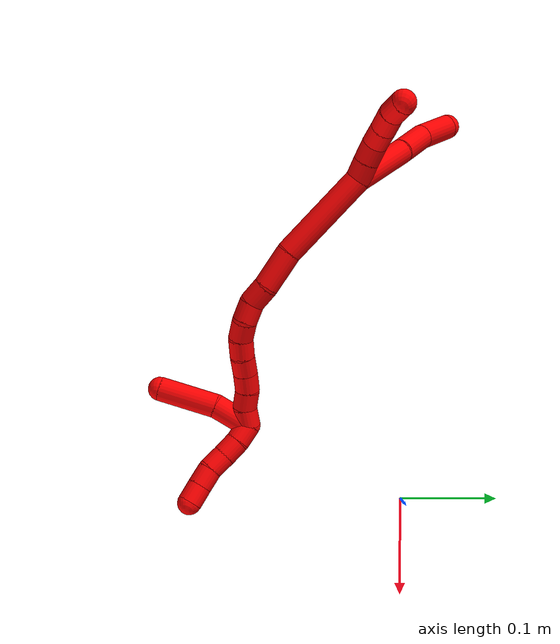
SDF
<sdf version="1.7">
 <world name="default">
  <model name="2">
   <static>0</static>
   <link name="2">
    <collision name="collision-cylinder-e_1_2_8">
     <pose>-0.014724 0.002936 0.031737 -0.092255 -0.432761 0.020293</pose>
     <geometry><cylinder><radius>0.0125</radius><length>0.070219</length></cylinder></geometry>
     <surface>
      <friction><ode><mu>1.16</mu><mu2>1.16</mu2><slip1>0</slip1><slip2>0</slip2></ode></friction>
      <contact><ode><kp>1e+06</kp><kd>1</kd><max_vel>0</max_vel><min_depth>0.001</min_depth></ode></contact>
     </surface>
    </collision>
    <visual name="visual-cylinder-e_1_2_8">
     <pose>-0.014724 0.002936 0.031737 -0.092255 -0.432761 0.020293</pose>
     <geometry><cylinder><radius>0.0125</radius><length>0.070219</length></cylinder></geometry>
     <material><ambient>1 0 0 1</ambient></material>
    </visual>
    <collision name="collision-cylinder-e_2_8_9">
     <pose>-0.036383 0.005463 0.083184 0.02078 -0.338271 -0.003549</pose>
     <geometry><cylinder><radius>0.0125</radius><length>0.041795</length></cylinder></geometry>
     <surface>
      <friction><ode><mu>1.16</mu><mu2>1.16</mu2><slip1>0</slip1><slip2>0</slip2></ode></friction>
      <contact><ode><kp>1e+06</kp><kd>1</kd><max_vel>0</max_vel><min_depth>0.001</min_depth></ode></contact>
     </surface>
    </collision>
    <visual name="visual-cylinder-e_2_8_9">
     <pose>-0.036383 0.005463 0.083184 0.02078 -0.338271 -0.003549</pose>
     <geometry><cylinder><radius>0.0125</radius><length>0.041795</length></cylinder></geometry>
     <material><ambient>1 0 0 1</ambient></material>
    </visual>
    <collision name="collision-cylinder-e_3_9_6">
     <pose>-0.054056 0.006446 0.118497 -0.089027 -0.600877 0.027598</pose>
     <geometry><cylinder><radius>0.0125</radius><length>0.037986</length></cylinder></geometry>
     <surface>
      <friction><ode><mu>1.16</mu><mu2>1.16</mu2><slip1>0</slip1><slip2>0</slip2></ode></friction>
      <contact><ode><kp>1e+06</kp><kd>1</kd><max_vel>0</max_vel><min_depth>0.001</min_depth></ode></contact>
     </surface>
    </collision>
    <visual name="visual-cylinder-e_3_9_6">
     <pose>-0.054056 0.006446 0.118497 -0.089027 -0.600877 0.027598</pose>
     <geometry><cylinder><radius>0.0125</radius><length>0.037986</length></cylinder></geometry>
     <material><ambient>1 0 0 1</ambient></material>
    </visual>
    <collision name="collision-cylinder-e_1_2_10">
     <pose>-0.000613 0.009511 0.003028 -1.26253 -0.061289 0.044812</pose>
     <geometry><cylinder><radius>0.0125</radius><length>0.02</length></cylinder></geometry>
     <surface>
      <friction><ode><mu>1.16</mu><mu2>1.16</mu2><slip1>0</slip1><slip2>0</slip2></ode></friction>
      <contact><ode><kp>1e+06</kp><kd>1</kd><max_vel>0</max_vel><min_depth>0.001</min_depth></ode></contact>
     </surface>
    </collision>
    <visual name="visual-cylinder-e_1_2_10">
     <pose>-0.000613 0.009511 0.003028 -1.26253 -0.061289 0.044812</pose>
     <geometry><cylinder><radius>0.0125</radius><length>0.02</length></cylinder></geometry>
     <material><ambient>1 0 0 1</ambient></material>
    </visual>
    <collision name="collision-cylinder-e_2_10_11">
     <pose>-0.002136 0.028697 0.008415 -1.33174 -0.09126 0.071708</pose>
     <geometry><cylinder><radius>0.0125</radius><length>0.02</length></cylinder></geometry>
     <surface>
      <friction><ode><mu>1.16</mu><mu2>1.16</mu2><slip1>0</slip1><slip2>0</slip2></ode></friction>
      <contact><ode><kp>1e+06</kp><kd>1</kd><max_vel>0</max_vel><min_depth>0.001</min_depth></ode></contact>
     </surface>
    </collision>
    <visual name="visual-cylinder-e_2_10_11">
     <pose>-0.002136 0.028697 0.008415 -1.33174 -0.09126 0.071708</pose>
     <geometry><cylinder><radius>0.0125</radius><length>0.02</length></cylinder></geometry>
     <material><ambient>1 0 0 1</ambient></material>
    </visual>
    <collision name="collision-cylinder-e_3_11_12">
     <pose>-0.004513 0.048233 0.009986 -1.65037 -0.147038 0.15918</pose>
     <geometry><cylinder><radius>0.0125</radius><length>0.02</length></cylinder></geometry>
     <surface>
      <friction><ode><mu>1.16</mu><mu2>1.16</mu2><slip1>0</slip1><slip2>0</slip2></ode></friction>
      <contact><ode><kp>1e+06</kp><kd>1</kd><max_vel>0</max_vel><min_depth>0.001</min_depth></ode></contact>
     </surface>
    </collision>
    <visual name="visual-cylinder-e_3_11_12">
     <pose>-0.004513 0.048233 0.009986 -1.65037 -0.147038 0.15918</pose>
     <geometry><cylinder><radius>0.0125</radius><length>0.02</length></cylinder></geometry>
     <material><ambient>1 0 0 1</ambient></material>
    </visual>
    <collision name="collision-cylinder-e_4_12_13">
     <pose>-0.007147 0.067938 0.007892 -1.70294 -0.11714 0.133693</pose>
     <geometry><cylinder><radius>0.0125</radius><length>0.02</length></cylinder></geometry>
     <surface>
      <friction><ode><mu>1.16</mu><mu2>1.16</mu2><slip1>0</slip1><slip2>0</slip2></ode></friction>
      <contact><ode><kp>1e+06</kp><kd>1</kd><max_vel>0</max_vel><min_depth>0.001</min_depth></ode></contact>
     </surface>
    </collision>
    <visual name="visual-cylinder-e_4_12_13">
     <pose>-0.007147 0.067938 0.007892 -1.70294 -0.11714 0.133693</pose>
     <geometry><cylinder><radius>0.0125</radius><length>0.02</length></cylinder></geometry>
     <material><ambient>1 0 0 1</ambient></material>
    </visual>
    <collision name="collision-cylinder-e_5_13_5">
     <pose>-0.01162 0.086945 0.004317 -1.81325 -0.336784 0.427696</pose>
     <geometry><cylinder><radius>0.0125</radius><length>0.02</length></cylinder></geometry>
     <surface>
      <friction><ode><mu>1.16</mu><mu2>1.16</mu2><slip1>0</slip1><slip2>0</slip2></ode></friction>
      <contact><ode><kp>1e+06</kp><kd>1</kd><max_vel>0</max_vel><min_depth>0.001</min_depth></ode></contact>
     </surface>
    </collision>
    <visual name="visual-cylinder-e_5_13_5">
     <pose>-0.01162 0.086945 0.004317 -1.81325 -0.336784 0.427696</pose>
     <geometry><cylinder><radius>0.0125</radius><length>0.02</length></cylinder></geometry>
     <material><ambient>1 0 0 1</ambient></material>
    </visual>
    <collision name="collision-cylinder-e_1_2_14">
     <pose>0.018734 -0.035058 -0.028113 2.2467 0.394983 0.79007</pose>
     <geometry><cylinder><radius>0.0125</radius><length>0.097374</length></cylinder></geometry>
     <surface>
      <friction><ode><mu>1.16</mu><mu2>1.16</mu2><slip1>0</slip1><slip2>0</slip2></ode></friction>
      <contact><ode><kp>1e+06</kp><kd>1</kd><max_vel>0</max_vel><min_depth>0.001</min_depth></ode></contact>
     </surface>
    </collision>
    <visual name="visual-cylinder-e_1_2_14">
     <pose>0.018734 -0.035058 -0.028113 2.2467 0.394983 0.79007</pose>
     <geometry><cylinder><radius>0.0125</radius><length>0.097374</length></cylinder></geometry>
     <material><ambient>1 0 0 1</ambient></material>
    </visual>
    <collision name="collision-cylinder-e_2_14_15">
     <pose>0.042036 -0.086008 -0.067698 2.19603 0.228958 0.442261</pose>
     <geometry><cylinder><radius>0.0125</radius><length>0.040249</length></cylinder></geometry>
     <surface>
      <friction><ode><mu>1.16</mu><mu2>1.16</mu2><slip1>0</slip1><slip2>0</slip2></ode></friction>
      <contact><ode><kp>1e+06</kp><kd>1</kd><max_vel>0</max_vel><min_depth>0.001</min_depth></ode></contact>
     </surface>
    </collision>
    <visual name="visual-cylinder-e_2_14_15">
     <pose>0.042036 -0.086008 -0.067698 2.19603 0.228958 0.442261</pose>
     <geometry><cylinder><radius>0.0125</radius><length>0.040249</length></cylinder></geometry>
     <material><ambient>1 0 0 1</ambient></material>
    </visual>
    <collision name="collision-cylinder-e_3_15_16">
     <pose>0.050402 -0.111211 -0.083584 2.01354 0.353173 0.549898</pose>
     <geometry><cylinder><radius>0.0125</radius><length>0.021964</length></cylinder></geometry>
     <surface>
      <friction><ode><mu>1.16</mu><mu2>1.16</mu2><slip1>0</slip1><slip2>0</slip2></ode></friction>
      <contact><ode><kp>1e+06</kp><kd>1</kd><max_vel>0</max_vel><min_depth>0.001</min_depth></ode></contact>
     </surface>
    </collision>
    <visual name="visual-cylinder-e_3_15_16">
     <pose>0.050402 -0.111211 -0.083584 2.01354 0.353173 0.549898</pose>
     <geometry><cylinder><radius>0.0125</radius><length>0.021964</length></cylinder></geometry>
     <material><ambient>1 0 0 1</ambient></material>
    </visual>
    <collision name="collision-cylinder-e_4_16_17">
     <pose>0.054452 -0.12916 -0.093223 2.11471 0.024898 0.044149</pose>
     <geometry><cylinder><radius>0.0125</radius><length>0.020198</length></cylinder></geometry>
     <surface>
      <friction><ode><mu>1.16</mu><mu2>1.16</mu2><slip1>0</slip1><slip2>0</slip2></ode></friction>
      <contact><ode><kp>1e+06</kp><kd>1</kd><max_vel>0</max_vel><min_depth>0.001</min_depth></ode></contact>
     </surface>
    </collision>
    <visual name="visual-cylinder-e_4_16_17">
     <pose>0.054452 -0.12916 -0.093223 2.11471 0.024898 0.044149</pose>
     <geometry><cylinder><radius>0.0125</radius><length>0.020198</length></cylinder></geometry>
     <material><ambient>1 0 0 1</ambient></material>
    </visual>
    <collision name="collision-cylinder-e_5_17_18">
     <pose>0.053758 -0.147463 -0.101131 1.84161 -0.093997 -0.123582</pose>
     <geometry><cylinder><radius>0.0125</radius><length>0.020149</length></cylinder></geometry>
     <surface>
      <friction><ode><mu>1.16</mu><mu2>1.16</mu2><slip1>0</slip1><slip2>0</slip2></ode></friction>
      <contact><ode><kp>1e+06</kp><kd>1</kd><max_vel>0</max_vel><min_depth>0.001</min_depth></ode></contact>
     </surface>
    </collision>
    <visual name="visual-cylinder-e_5_17_18">
     <pose>0.053758 -0.147463 -0.101131 1.84161 -0.093997 -0.123582</pose>
     <geometry><cylinder><radius>0.0125</radius><length>0.020149</length></cylinder></geometry>
     <material><ambient>1 0 0 1</ambient></material>
    </visual>
    <collision name="collision-cylinder-e_6_18_19">
     <pose>0.049153 -0.166135 -0.106243 1.83425 -0.373838 -0.484112</pose>
     <geometry><cylinder><radius>0.0125</radius><length>0.020043</length></cylinder></geometry>
     <surface>
      <friction><ode><mu>1.16</mu><mu2>1.16</mu2><slip1>0</slip1><slip2>0</slip2></ode></friction>
      <contact><ode><kp>1e+06</kp><kd>1</kd><max_vel>0</max_vel><min_depth>0.001</min_depth></ode></contact>
     </surface>
    </collision>
    <visual name="visual-cylinder-e_6_18_19">
     <pose>0.049153 -0.166135 -0.106243 1.83425 -0.373838 -0.484112</pose>
     <geometry><cylinder><radius>0.0125</radius><length>0.020043</length></cylinder></geometry>
     <material><ambient>1 0 0 1</ambient></material>
    </visual>
    <collision name="collision-cylinder-e_7_19_20">
     <pose>0.041402 -0.184173 -0.110006 1.71734 -0.421345 -0.485678</pose>
     <geometry><cylinder><radius>0.0125</radius><length>0.020006</length></cylinder></geometry>
     <surface>
      <friction><ode><mu>1.16</mu><mu2>1.16</mu2><slip1>0</slip1><slip2>0</slip2></ode></friction>
      <contact><ode><kp>1e+06</kp><kd>1</kd><max_vel>0</max_vel><min_depth>0.001</min_depth></ode></contact>
     </surface>
    </collision>
    <visual name="visual-cylinder-e_7_19_20">
     <pose>0.041402 -0.184173 -0.110006 1.71734 -0.421345 -0.485678</pose>
     <geometry><cylinder><radius>0.0125</radius><length>0.020006</length></cylinder></geometry>
     <material><ambient>1 0 0 1</ambient></material>
    </visual>
    <collision name="collision-cylinder-e_8_20_21">
     <pose>0.033266 -0.201992 -0.113898 1.85415 -0.416067 -0.54847</pose>
     <geometry><cylinder><radius>0.0125</radius><length>0.020016</length></cylinder></geometry>
     <surface>
      <friction><ode><mu>1.16</mu><mu2>1.16</mu2><slip1>0</slip1><slip2>0</slip2></ode></friction>
      <contact><ode><kp>1e+06</kp><kd>1</kd><max_vel>0</max_vel><min_depth>0.001</min_depth></ode></contact>
     </surface>
    </collision>
    <visual name="visual-cylinder-e_8_20_21">
     <pose>0.033266 -0.201992 -0.113898 1.85415 -0.416067 -0.54847</pose>
     <geometry><cylinder><radius>0.0125</radius><length>0.020016</length></cylinder></geometry>
     <material><ambient>1 0 0 1</ambient></material>
    </visual>
    <collision name="collision-cylinder-e_9_21_22">
     <pose>0.027441 -0.219913 -0.120125 1.9527 -0.178984 -0.263931</pose>
     <geometry><cylinder><radius>0.0125</radius><length>0.020002</length></cylinder></geometry>
     <surface>
      <friction><ode><mu>1.16</mu><mu2>1.16</mu2><slip1>0</slip1><slip2>0</slip2></ode></friction>
      <contact><ode><kp>1e+06</kp><kd>1</kd><max_vel>0</max_vel><min_depth>0.001</min_depth></ode></contact>
     </surface>
    </collision>
    <visual name="visual-cylinder-e_9_21_22">
     <pose>0.027441 -0.219913 -0.120125 1.9527 -0.178984 -0.263931</pose>
     <geometry><cylinder><radius>0.0125</radius><length>0.020002</length></cylinder></geometry>
     <material><ambient>1 0 0 1</ambient></material>
    </visual>
    <collision name="collision-cylinder-e_10_22_1">
     <pose>0.020733 -0.23705 -0.127203 1.9735 -0.515269 -0.758675</pose>
     <geometry><cylinder><radius>0.0125</radius><length>0.02</length></cylinder></geometry>
     <surface>
      <friction><ode><mu>1.16</mu><mu2>1.16</mu2><slip1>0</slip1><slip2>0</slip2></ode></friction>
      <contact><ode><kp>1e+06</kp><kd>1</kd><max_vel>0</max_vel><min_depth>0.001</min_depth></ode></contact>
     </surface>
    </collision>
    <visual name="visual-cylinder-e_10_22_1">
     <pose>0.020733 -0.23705 -0.127203 1.9735 -0.515269 -0.758675</pose>
     <geometry><cylinder><radius>0.0125</radius><length>0.02</length></cylinder></geometry>
     <material><ambient>1 0 0 1</ambient></material>
    </visual>
    <collision name="collision-cylinder-e_1_1_23">
     <pose>0.035046 -0.243145 -0.127938 -0.620369 1.40155 -0.528175</pose>
     <geometry><cylinder><radius>0.0125</radius><length>0.03904</length></cylinder></geometry>
     <surface>
      <friction><ode><mu>1.16</mu><mu2>1.16</mu2><slip1>0</slip1><slip2>0</slip2></ode></friction>
      <contact><ode><kp>1e+06</kp><kd>1</kd><max_vel>0</max_vel><min_depth>0.001</min_depth></ode></contact>
     </surface>
    </collision>
    <visual name="visual-cylinder-e_1_1_23">
     <pose>0.035046 -0.243145 -0.127938 -0.620369 1.40155 -0.528175</pose>
     <geometry><cylinder><radius>0.0125</radius><length>0.03904</length></cylinder></geometry>
     <material><ambient>1 0 0 1</ambient></material>
    </visual>
    <collision name="collision-cylinder-e_2_23_4">
     <pose>0.084658 -0.243739 -0.125846 1.79974 1.48627 1.71662</pose>
     <geometry><cylinder><radius>0.0125</radius><length>0.06096</length></cylinder></geometry>
     <surface>
      <friction><ode><mu>1.16</mu><mu2>1.16</mu2><slip1>0</slip1><slip2>0</slip2></ode></friction>
      <contact><ode><kp>1e+06</kp><kd>1</kd><max_vel>0</max_vel><min_depth>0.001</min_depth></ode></contact>
     </surface>
    </collision>
    <visual name="visual-cylinder-e_2_23_4">
     <pose>0.084658 -0.243739 -0.125846 1.79974 1.48627 1.71662</pose>
     <geometry><cylinder><radius>0.0125</radius><length>0.06096</length></cylinder></geometry>
     <material><ambient>1 0 0 1</ambient></material>
    </visual>
    <collision name="collision-cylinder-e_1_1_24">
     <pose>0.017957 -0.250822 -0.138495 2.50998 0.216903 0.643305</pose>
     <geometry><cylinder><radius>0.0125</radius><length>0.02</length></cylinder></geometry>
     <surface>
      <friction><ode><mu>1.16</mu><mu2>1.16</mu2><slip1>0</slip1><slip2>0</slip2></ode></friction>
      <contact><ode><kp>1e+06</kp><kd>1</kd><max_vel>0</max_vel><min_depth>0.001</min_depth></ode></contact>
     </surface>
    </collision>
    <visual name="visual-cylinder-e_1_1_24">
     <pose>0.017957 -0.250822 -0.138495 2.50998 0.216903 0.643305</pose>
     <geometry><cylinder><radius>0.0125</radius><length>0.02</length></cylinder></geometry>
     <material><ambient>1 0 0 1</ambient></material>
    </visual>
    <collision name="collision-cylinder-e_2_24_25">
     <pose>0.023879 -0.262181 -0.153759 2.49328 0.386572 1.05493</pose>
     <geometry><cylinder><radius>0.0125</radius><length>0.02</length></cylinder></geometry>
     <surface>
      <friction><ode><mu>1.16</mu><mu2>1.16</mu2><slip1>0</slip1><slip2>0</slip2></ode></friction>
      <contact><ode><kp>1e+06</kp><kd>1</kd><max_vel>0</max_vel><min_depth>0.001</min_depth></ode></contact>
     </surface>
    </collision>
    <visual name="visual-cylinder-e_2_24_25">
     <pose>0.023879 -0.262181 -0.153759 2.49328 0.386572 1.05493</pose>
     <geometry><cylinder><radius>0.0125</radius><length>0.02</length></cylinder></geometry>
     <material><ambient>1 0 0 1</ambient></material>
    </visual>
    <collision name="collision-cylinder-e_3_25_26">
     <pose>0.031746 -0.272647 -0.168854 2.57805 0.422033 1.27411</pose>
     <geometry><cylinder><radius>0.0125</radius><length>0.02</length></cylinder></geometry>
     <surface>
      <friction><ode><mu>1.16</mu><mu2>1.16</mu2><slip1>0</slip1><slip2>0</slip2></ode></friction>
      <contact><ode><kp>1e+06</kp><kd>1</kd><max_vel>0</max_vel><min_depth>0.001</min_depth></ode></contact>
     </surface>
    </collision>
    <visual name="visual-cylinder-e_3_25_26">
     <pose>0.031746 -0.272647 -0.168854 2.57805 0.422033 1.27411</pose>
     <geometry><cylinder><radius>0.0125</radius><length>0.02</length></cylinder></geometry>
     <material><ambient>1 0 0 1</ambient></material>
    </visual>
    <collision name="collision-cylinder-e_4_26_27">
     <pose>0.037636 -0.283236 -0.184573 2.52159 0.180433 0.550477</pose>
     <geometry><cylinder><radius>0.0125</radius><length>0.02</length></cylinder></geometry>
     <surface>
      <friction><ode><mu>1.16</mu><mu2>1.16</mu2><slip1>0</slip1><slip2>0</slip2></ode></friction>
      <contact><ode><kp>1e+06</kp><kd>1</kd><max_vel>0</max_vel><min_depth>0.001</min_depth></ode></contact>
     </surface>
    </collision>
    <visual name="visual-cylinder-e_4_26_27">
     <pose>0.037636 -0.283236 -0.184573 2.52159 0.180433 0.550477</pose>
     <geometry><cylinder><radius>0.0125</radius><length>0.02</length></cylinder></geometry>
     <material><ambient>1 0 0 1</ambient></material>
    </visual>
    <collision name="collision-cylinder-e_5_27_3">
     <pose>0.041025 -0.294168 -0.200961 2.585 0.160098 0.547457</pose>
     <geometry><cylinder><radius>0.0125</radius><length>0.02</length></cylinder></geometry>
     <surface>
      <friction><ode><mu>1.16</mu><mu2>1.16</mu2><slip1>0</slip1><slip2>0</slip2></ode></friction>
      <contact><ode><kp>1e+06</kp><kd>1</kd><max_vel>0</max_vel><min_depth>0.001</min_depth></ode></contact>
     </surface>
    </collision>
    <visual name="visual-cylinder-e_5_27_3">
     <pose>0.041025 -0.294168 -0.200961 2.585 0.160098 0.547457</pose>
     <geometry><cylinder><radius>0.0125</radius><length>0.02</length></cylinder></geometry>
     <material><ambient>1 0 0 1</ambient></material>
    </visual>
    <collision name="collision-sphere-3">
     <pose>0.042619 -0.299383 -0.209343 0 -0 0</pose>
     <geometry><sphere><radius>0.0125</radius></sphere></geometry>
     <surface>
      <friction><ode><mu>1.16</mu><mu2>1.16</mu2><slip1>0</slip1><slip2>0</slip2></ode></friction>
      <contact><ode><kp>1e+06</kp><kd>1</kd><max_vel>0</max_vel><min_depth>0.001</min_depth></ode></contact>
     </surface>
    </collision>
    <visual name="visual-sphere-3">
     <pose>0.042619 -0.299383 -0.209343 0 -0 0</pose>
     <geometry><sphere><radius>0.0125</radius></sphere></geometry>
     <material><ambient>1 0 0 1</ambient></material>
    </visual>
    <collision name="collision-sphere-27">
     <pose>0.039431 -0.288952 -0.192579 0 -0 0</pose>
     <geometry><sphere><radius>0.0125</radius></sphere></geometry>
     <surface>
      <friction><ode><mu>1.16</mu><mu2>1.16</mu2><slip1>0</slip1><slip2>0</slip2></ode></friction>
      <contact><ode><kp>1e+06</kp><kd>1</kd><max_vel>0</max_vel><min_depth>0.001</min_depth></ode></contact>
     </surface>
    </collision>
    <visual name="visual-sphere-27">
     <pose>0.039431 -0.288952 -0.192579 0 -0 0</pose>
     <geometry><sphere><radius>0.0125</radius></sphere></geometry>
     <material><ambient>1 0 0 1</ambient></material>
    </visual>
    <collision name="collision-sphere-26">
     <pose>0.035842 -0.27752 -0.176566 0 -0 0</pose>
     <geometry><sphere><radius>0.0125</radius></sphere></geometry>
     <surface>
      <friction><ode><mu>1.16</mu><mu2>1.16</mu2><slip1>0</slip1><slip2>0</slip2></ode></friction>
      <contact><ode><kp>1e+06</kp><kd>1</kd><max_vel>0</max_vel><min_depth>0.001</min_depth></ode></contact>
     </surface>
    </collision>
    <visual name="visual-sphere-26">
     <pose>0.035842 -0.27752 -0.176566 0 -0 0</pose>
     <geometry><sphere><radius>0.0125</radius></sphere></geometry>
     <material><ambient>1 0 0 1</ambient></material>
    </visual>
    <collision name="collision-sphere-25">
     <pose>0.027649 -0.267774 -0.161142 0 -0 0</pose>
     <geometry><sphere><radius>0.0125</radius></sphere></geometry>
     <surface>
      <friction><ode><mu>1.16</mu><mu2>1.16</mu2><slip1>0</slip1><slip2>0</slip2></ode></friction>
      <contact><ode><kp>1e+06</kp><kd>1</kd><max_vel>0</max_vel><min_depth>0.001</min_depth></ode></contact>
     </surface>
    </collision>
    <visual name="visual-sphere-25">
     <pose>0.027649 -0.267774 -0.161142 0 -0 0</pose>
     <geometry><sphere><radius>0.0125</radius></sphere></geometry>
     <material><ambient>1 0 0 1</ambient></material>
    </visual>
    <collision name="collision-sphere-24">
     <pose>0.020109 -0.256588 -0.146376 0 -0 0</pose>
     <geometry><sphere><radius>0.0125</radius></sphere></geometry>
     <surface>
      <friction><ode><mu>1.16</mu><mu2>1.16</mu2><slip1>0</slip1><slip2>0</slip2></ode></friction>
      <contact><ode><kp>1e+06</kp><kd>1</kd><max_vel>0</max_vel><min_depth>0.001</min_depth></ode></contact>
     </surface>
    </collision>
    <visual name="visual-sphere-24">
     <pose>0.020109 -0.256588 -0.146376 0 -0 0</pose>
     <geometry><sphere><radius>0.0125</radius></sphere></geometry>
     <material><ambient>1 0 0 1</ambient></material>
    </visual>
    <collision name="collision-sphere-4">
     <pose>0.115029 -0.246246 -0.12643 0 -0 0</pose>
     <geometry><sphere><radius>0.0125</radius></sphere></geometry>
     <surface>
      <friction><ode><mu>1.16</mu><mu2>1.16</mu2><slip1>0</slip1><slip2>0</slip2></ode></friction>
      <contact><ode><kp>1e+06</kp><kd>1</kd><max_vel>0</max_vel><min_depth>0.001</min_depth></ode></contact>
     </surface>
    </collision>
    <visual name="visual-sphere-4">
     <pose>0.115029 -0.246246 -0.12643 0 -0 0</pose>
     <geometry><sphere><radius>0.0125</radius></sphere></geometry>
     <material><ambient>1 0 0 1</ambient></material>
    </visual>
    <collision name="collision-sphere-23">
     <pose>0.054287 -0.241233 -0.125262 0 -0 0</pose>
     <geometry><sphere><radius>0.0125</radius></sphere></geometry>
     <surface>
      <friction><ode><mu>1.16</mu><mu2>1.16</mu2><slip1>0</slip1><slip2>0</slip2></ode></friction>
      <contact><ode><kp>1e+06</kp><kd>1</kd><max_vel>0</max_vel><min_depth>0.001</min_depth></ode></contact>
     </surface>
    </collision>
    <visual name="visual-sphere-23">
     <pose>0.054287 -0.241233 -0.125262 0 -0 0</pose>
     <geometry><sphere><radius>0.0125</radius></sphere></geometry>
     <material><ambient>1 0 0 1</ambient></material>
    </visual>
    <collision name="collision-sphere-1">
     <pose>0.015805 -0.245056 -0.130613 0 -0 0</pose>
     <geometry><sphere><radius>0.0125</radius></sphere></geometry>
     <surface>
      <friction><ode><mu>1.16</mu><mu2>1.16</mu2><slip1>0</slip1><slip2>0</slip2></ode></friction>
      <contact><ode><kp>1e+06</kp><kd>1</kd><max_vel>0</max_vel><min_depth>0.001</min_depth></ode></contact>
     </surface>
    </collision>
    <visual name="visual-sphere-1">
     <pose>0.015805 -0.245056 -0.130613 0 -0 0</pose>
     <geometry><sphere><radius>0.0125</radius></sphere></geometry>
     <material><ambient>1 0 0 1</ambient></material>
    </visual>
    <collision name="collision-sphere-22">
     <pose>0.02566 -0.229045 -0.123793 0 -0 0</pose>
     <geometry><sphere><radius>0.0125</radius></sphere></geometry>
     <surface>
      <friction><ode><mu>1.16</mu><mu2>1.16</mu2><slip1>0</slip1><slip2>0</slip2></ode></friction>
      <contact><ode><kp>1e+06</kp><kd>1</kd><max_vel>0</max_vel><min_depth>0.001</min_depth></ode></contact>
     </surface>
    </collision>
    <visual name="visual-sphere-22">
     <pose>0.02566 -0.229045 -0.123793 0 -0 0</pose>
     <geometry><sphere><radius>0.0125</radius></sphere></geometry>
     <material><ambient>1 0 0 1</ambient></material>
    </visual>
    <collision name="collision-sphere-21">
     <pose>0.029221 -0.21078 -0.116457 0 -0 0</pose>
     <geometry><sphere><radius>0.0125</radius></sphere></geometry>
     <surface>
      <friction><ode><mu>1.16</mu><mu2>1.16</mu2><slip1>0</slip1><slip2>0</slip2></ode></friction>
      <contact><ode><kp>1e+06</kp><kd>1</kd><max_vel>0</max_vel><min_depth>0.001</min_depth></ode></contact>
     </surface>
    </collision>
    <visual name="visual-sphere-21">
     <pose>0.029221 -0.21078 -0.116457 0 -0 0</pose>
     <geometry><sphere><radius>0.0125</radius></sphere></geometry>
     <material><ambient>1 0 0 1</ambient></material>
    </visual>
    <collision name="collision-sphere-11">
     <pose>-0.003048 0.038372 0.010773 0 -0 0</pose>
     <geometry><sphere><radius>0.0125</radius></sphere></geometry>
     <surface>
      <friction><ode><mu>1.16</mu><mu2>1.16</mu2><slip1>0</slip1><slip2>0</slip2></ode></friction>
      <contact><ode><kp>1e+06</kp><kd>1</kd><max_vel>0</max_vel><min_depth>0.001</min_depth></ode></contact>
     </surface>
    </collision>
    <visual name="visual-sphere-11">
     <pose>-0.003048 0.038372 0.010773 0 -0 0</pose>
     <geometry><sphere><radius>0.0125</radius></sphere></geometry>
     <material><ambient>1 0 0 1</ambient></material>
    </visual>
    <collision name="collision-sphere-10">
     <pose>-0.001225 0.019021 0.006057 0 -0 0</pose>
     <geometry><sphere><radius>0.0125</radius></sphere></geometry>
     <surface>
      <friction><ode><mu>1.16</mu><mu2>1.16</mu2><slip1>0</slip1><slip2>0</slip2></ode></friction>
      <contact><ode><kp>1e+06</kp><kd>1</kd><max_vel>0</max_vel><min_depth>0.001</min_depth></ode></contact>
     </surface>
    </collision>
    <visual name="visual-sphere-10">
     <pose>-0.001225 0.019021 0.006057 0 -0 0</pose>
     <geometry><sphere><radius>0.0125</radius></sphere></geometry>
     <material><ambient>1 0 0 1</ambient></material>
    </visual>
    <collision name="collision-sphere-6">
     <pose>-0.064794 0.007839 0.134101 0 -0 0</pose>
     <geometry><sphere><radius>0.0125</radius></sphere></geometry>
     <surface>
      <friction><ode><mu>1.16</mu><mu2>1.16</mu2><slip1>0</slip1><slip2>0</slip2></ode></friction>
      <contact><ode><kp>1e+06</kp><kd>1</kd><max_vel>0</max_vel><min_depth>0.001</min_depth></ode></contact>
     </surface>
    </collision>
    <visual name="visual-sphere-6">
     <pose>-0.064794 0.007839 0.134101 0 -0 0</pose>
     <geometry><sphere><radius>0.0125</radius></sphere></geometry>
     <material><ambient>1 0 0 1</ambient></material>
    </visual>
    <collision name="collision-sphere-9">
     <pose>-0.043318 0.005053 0.102892 0 -0 0</pose>
     <geometry><sphere><radius>0.0125</radius></sphere></geometry>
     <surface>
      <friction><ode><mu>1.16</mu><mu2>1.16</mu2><slip1>0</slip1><slip2>0</slip2></ode></friction>
      <contact><ode><kp>1e+06</kp><kd>1</kd><max_vel>0</max_vel><min_depth>0.001</min_depth></ode></contact>
     </surface>
    </collision>
    <visual name="visual-sphere-9">
     <pose>-0.043318 0.005053 0.102892 0 -0 0</pose>
     <geometry><sphere><radius>0.0125</radius></sphere></geometry>
     <material><ambient>1 0 0 1</ambient></material>
    </visual>
    <collision name="collision-sphere-2">
     <geometry><sphere><radius>0.0125</radius></sphere></geometry>
     <surface>
      <friction><ode><mu>1.16</mu><mu2>1.16</mu2><slip1>0</slip1><slip2>0</slip2></ode></friction>
      <contact><ode><kp>1e+06</kp><kd>1</kd><max_vel>0</max_vel><min_depth>0.001</min_depth></ode></contact>
     </surface>
    </collision>
    <visual name="visual-sphere-2">
     <geometry><sphere><radius>0.0125</radius></sphere></geometry>
     <material><ambient>1 0 0 1</ambient></material>
    </visual>
    <collision name="collision-sphere-19">
     <pose>0.045493 -0.175142 -0.108673 0 -0 0</pose>
     <geometry><sphere><radius>0.0125</radius></sphere></geometry>
     <surface>
      <friction><ode><mu>1.16</mu><mu2>1.16</mu2><slip1>0</slip1><slip2>0</slip2></ode></friction>
      <contact><ode><kp>1e+06</kp><kd>1</kd><max_vel>0</max_vel><min_depth>0.001</min_depth></ode></contact>
     </surface>
    </collision>
    <visual name="visual-sphere-19">
     <pose>0.045493 -0.175142 -0.108673 0 -0 0</pose>
     <geometry><sphere><radius>0.0125</radius></sphere></geometry>
     <material><ambient>1 0 0 1</ambient></material>
    </visual>
    <collision name="collision-sphere-8">
     <pose>-0.029448 0.005873 0.063475 0 -0 0</pose>
     <geometry><sphere><radius>0.0125</radius></sphere></geometry>
     <surface>
      <friction><ode><mu>1.16</mu><mu2>1.16</mu2><slip1>0</slip1><slip2>0</slip2></ode></friction>
      <contact><ode><kp>1e+06</kp><kd>1</kd><max_vel>0</max_vel><min_depth>0.001</min_depth></ode></contact>
     </surface>
    </collision>
    <visual name="visual-sphere-8">
     <pose>-0.029448 0.005873 0.063475 0 -0 0</pose>
     <geometry><sphere><radius>0.0125</radius></sphere></geometry>
     <material><ambient>1 0 0 1</ambient></material>
    </visual>
    <collision name="collision-sphere-12">
     <pose>-0.005978 0.058093 0.0092 0 -0 0</pose>
     <geometry><sphere><radius>0.0125</radius></sphere></geometry>
     <surface>
      <friction><ode><mu>1.16</mu><mu2>1.16</mu2><slip1>0</slip1><slip2>0</slip2></ode></friction>
      <contact><ode><kp>1e+06</kp><kd>1</kd><max_vel>0</max_vel><min_depth>0.001</min_depth></ode></contact>
     </surface>
    </collision>
    <visual name="visual-sphere-12">
     <pose>-0.005978 0.058093 0.0092 0 -0 0</pose>
     <geometry><sphere><radius>0.0125</radius></sphere></geometry>
     <material><ambient>1 0 0 1</ambient></material>
    </visual>
    <collision name="collision-sphere-13">
     <pose>-0.008315 0.077783 0.006583 0 -0 0</pose>
     <geometry><sphere><radius>0.0125</radius></sphere></geometry>
     <surface>
      <friction><ode><mu>1.16</mu><mu2>1.16</mu2><slip1>0</slip1><slip2>0</slip2></ode></friction>
      <contact><ode><kp>1e+06</kp><kd>1</kd><max_vel>0</max_vel><min_depth>0.001</min_depth></ode></contact>
     </surface>
    </collision>
    <visual name="visual-sphere-13">
     <pose>-0.008315 0.077783 0.006583 0 -0 0</pose>
     <geometry><sphere><radius>0.0125</radius></sphere></geometry>
     <material><ambient>1 0 0 1</ambient></material>
    </visual>
    <collision name="collision-sphere-5">
     <pose>-0.014924 0.096108 0.002051 0 -0 0</pose>
     <geometry><sphere><radius>0.0125</radius></sphere></geometry>
     <surface>
      <friction><ode><mu>1.16</mu><mu2>1.16</mu2><slip1>0</slip1><slip2>0</slip2></ode></friction>
      <contact><ode><kp>1e+06</kp><kd>1</kd><max_vel>0</max_vel><min_depth>0.001</min_depth></ode></contact>
     </surface>
    </collision>
    <visual name="visual-sphere-5">
     <pose>-0.014924 0.096108 0.002051 0 -0 0</pose>
     <geometry><sphere><radius>0.0125</radius></sphere></geometry>
     <material><ambient>1 0 0 1</ambient></material>
    </visual>
    <collision name="collision-sphere-14">
     <pose>0.037469 -0.070117 -0.056227 0 -0 0</pose>
     <geometry><sphere><radius>0.0125</radius></sphere></geometry>
     <surface>
      <friction><ode><mu>1.16</mu><mu2>1.16</mu2><slip1>0</slip1><slip2>0</slip2></ode></friction>
      <contact><ode><kp>1e+06</kp><kd>1</kd><max_vel>0</max_vel><min_depth>0.001</min_depth></ode></contact>
     </surface>
    </collision>
    <visual name="visual-sphere-14">
     <pose>0.037469 -0.070117 -0.056227 0 -0 0</pose>
     <geometry><sphere><radius>0.0125</radius></sphere></geometry>
     <material><ambient>1 0 0 1</ambient></material>
    </visual>
    <collision name="collision-sphere-15">
     <pose>0.046604 -0.1019 -0.07917 0 -0 0</pose>
     <geometry><sphere><radius>0.0125</radius></sphere></geometry>
     <surface>
      <friction><ode><mu>1.16</mu><mu2>1.16</mu2><slip1>0</slip1><slip2>0</slip2></ode></friction>
      <contact><ode><kp>1e+06</kp><kd>1</kd><max_vel>0</max_vel><min_depth>0.001</min_depth></ode></contact>
     </surface>
    </collision>
    <visual name="visual-sphere-15">
     <pose>0.046604 -0.1019 -0.07917 0 -0 0</pose>
     <geometry><sphere><radius>0.0125</radius></sphere></geometry>
     <material><ambient>1 0 0 1</ambient></material>
    </visual>
    <collision name="collision-sphere-16">
     <pose>0.054201 -0.120521 -0.087999 0 -0 0</pose>
     <geometry><sphere><radius>0.0125</radius></sphere></geometry>
     <surface>
      <friction><ode><mu>1.16</mu><mu2>1.16</mu2><slip1>0</slip1><slip2>0</slip2></ode></friction>
      <contact><ode><kp>1e+06</kp><kd>1</kd><max_vel>0</max_vel><min_depth>0.001</min_depth></ode></contact>
     </surface>
    </collision>
    <visual name="visual-sphere-16">
     <pose>0.054201 -0.120521 -0.087999 0 -0 0</pose>
     <geometry><sphere><radius>0.0125</radius></sphere></geometry>
     <material><ambient>1 0 0 1</ambient></material>
    </visual>
    <collision name="collision-sphere-17">
     <pose>0.054704 -0.137799 -0.098448 0 -0 0</pose>
     <geometry><sphere><radius>0.0125</radius></sphere></geometry>
     <surface>
      <friction><ode><mu>1.16</mu><mu2>1.16</mu2><slip1>0</slip1><slip2>0</slip2></ode></friction>
      <contact><ode><kp>1e+06</kp><kd>1</kd><max_vel>0</max_vel><min_depth>0.001</min_depth></ode></contact>
     </surface>
    </collision>
    <visual name="visual-sphere-17">
     <pose>0.054704 -0.137799 -0.098448 0 -0 0</pose>
     <geometry><sphere><radius>0.0125</radius></sphere></geometry>
     <material><ambient>1 0 0 1</ambient></material>
    </visual>
    <collision name="collision-sphere-18">
     <pose>0.052812 -0.157128 -0.103814 0 -0 0</pose>
     <geometry><sphere><radius>0.0125</radius></sphere></geometry>
     <surface>
      <friction><ode><mu>1.16</mu><mu2>1.16</mu2><slip1>0</slip1><slip2>0</slip2></ode></friction>
      <contact><ode><kp>1e+06</kp><kd>1</kd><max_vel>0</max_vel><min_depth>0.001</min_depth></ode></contact>
     </surface>
    </collision>
    <visual name="visual-sphere-18">
     <pose>0.052812 -0.157128 -0.103814 0 -0 0</pose>
     <geometry><sphere><radius>0.0125</radius></sphere></geometry>
     <material><ambient>1 0 0 1</ambient></material>
    </visual>
    <collision name="collision-sphere-20">
     <pose>0.037311 -0.193203 -0.111339 0 -0 0</pose>
     <geometry><sphere><radius>0.0125</radius></sphere></geometry>
     <surface>
      <friction><ode><mu>1.16</mu><mu2>1.16</mu2><slip1>0</slip1><slip2>0</slip2></ode></friction>
      <contact><ode><kp>1e+06</kp><kd>1</kd><max_vel>0</max_vel><min_depth>0.001</min_depth></ode></contact>
     </surface>
    </collision>
    <visual name="visual-sphere-20">
     <pose>0.037311 -0.193203 -0.111339 0 -0 0</pose>
     <geometry><sphere><radius>0.0125</radius></sphere></geometry>
     <material><ambient>1 0 0 1</ambient></material>
    </visual>
    <inertial>
     <pose>0.019592 -0.108268 -0.055327 0 -0 0</pose>
     <mass>0.75</mass>
     <inertia><ixx>0.000188</ixx><ixy>0</ixy><ixz>0</ixz><iyy>9.3e-05</iyy><iyz>0</iyz><izz>2.4e-05</izz></inertia>
    </inertial>
   </link>
   <pose>-0.314496 -0.048011 0.100402 2.32816 -0.027223 -1.93356</pose>
  </model>
 </world>
</sdf>
